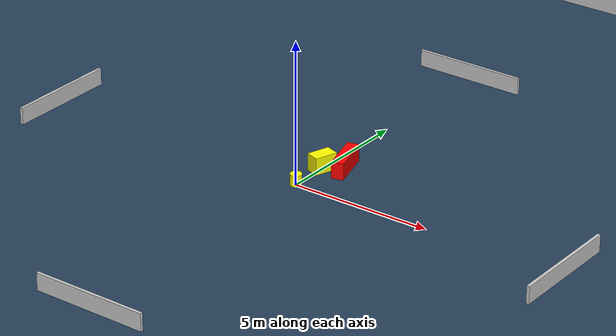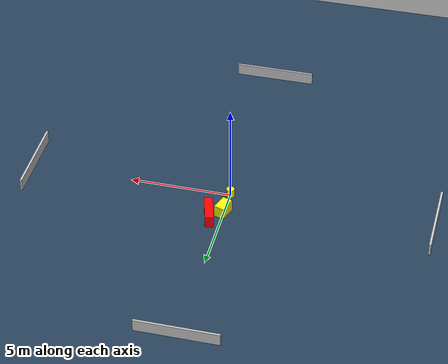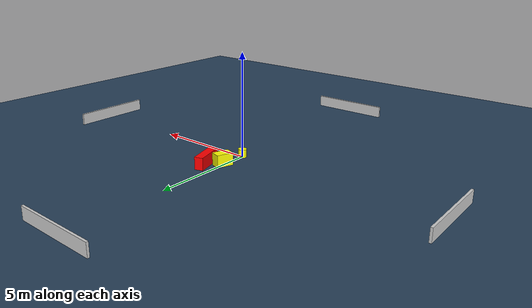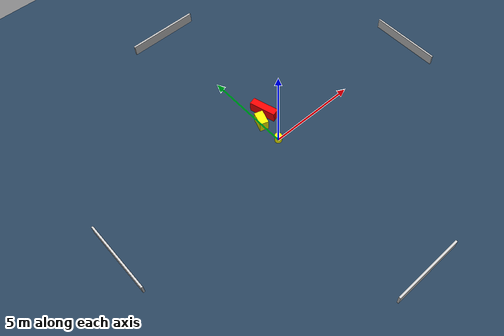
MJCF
<?xml version="1.0" ?>
<mujoco model="generated_environment">
  <option timestep="0.01" integrator="RK4" cone="elliptic"/>
  <default>
    <geom density="1"/>
  </default>
  <asset>
    <texture builtin="gradient" height="3072" name="skybox" rgb1="0.3 0.5 0.7" rgb2="0 0 0" type="skybox" width="512"/>
    <texture builtin="checker" height="300" name="groundplane" rgb1="0.2 0.3 0.4" rgb2="0.1 0.2 0.3" type="2d" width="300"/>
    <material name="groundplane" reflectance="0.2" texrepeat="5 5" texture="groundplane"/>
  </asset>
  <worldbody>
    <light dir="0 0 -1" directional="true" pos="0 0 1.5"/>
    <geom condim="3" friction="0.5 0.005 0.001" material="groundplane" name="floor" pos="0 0 0" size="0 0 0.05" type="plane"/>
    <body name="walls">
      <geom name="wall_1" condim="4" pos="-10.0 0.0 0.3" rgba="0.800000011920929 0.800000011920929 0.800000011920929 1.0" size="0.05 2.0 0.3" type="box"/>
      <geom name="wall_2" condim="4" pos="10.0 0.0 0.3" rgba="0.800000011920929 0.800000011920929 0.800000011920929 1.0" size="0.05 2.0 0.3" type="box"/>
      <geom name="wall_3" condim="4" pos="0.0 -10.0 0.3" rgba="0.800000011920929 0.800000011920929 0.800000011920929 1.0" size="2.0 0.05 0.3" type="box"/>
      <geom name="wall_4" condim="4" pos="0.0 10.0 0.3" rgba="0.800000011920929 0.800000011920929 0.800000011920929 1.0" size="2.0 0.05 0.3" type="box"/>
    </body>
    <body name="robot">
      <joint name="joint_x" type="slide" pos="0 0 0" axis="1 0 0"/>
      <joint name="joint_y" type="slide" pos="0 0 0" axis="0 1 0"/>
      <geom name="robot" type="cylinder" pos="0.0 0.0 0.2" size="0.2 0.2 0.0" mass="5.0" friction="1.0 0.005 0.0001" condim="4" rgba="1.0 1.0 0.0 1.0"/>
    </body>
    <body name="obstacle_1_movable">
      <geom name="obstacle_1_movable" condim="4" pos="0.03108446902627025 1.3628385290613267 0.3" euler="0 0 251.3355706525482" friction="0.0 0.005 0.001" rgba="1.0 1.0 0.0 1.0" size="0.4038337134175206 0.2443220352821231 0.3" type="box" mass="0.1"/>
      <joint type="free"/>
    </body>
    <body name="obstacle_2_static">
      <geom name="obstacle_2_static" condim="4" pos="0.624708930745638 1.815358153023727 0.3" euler="0 0 16.035921566046927" friction="0.0 0.005 0.001" rgba="1.0 0.0 0.0 1.0" size="0.20759689146337912 0.7481504225883349 0.3" type="box"/>
    </body>
  </worldbody>
  <actuator>
    <motor name="actuator_x" joint="joint_x" gear="1" ctrlrange="-1 1"/>
    <motor name="actuator_y" joint="joint_y" gear="1" ctrlrange="-1 1"/>
  </actuator>
</mujoco>
